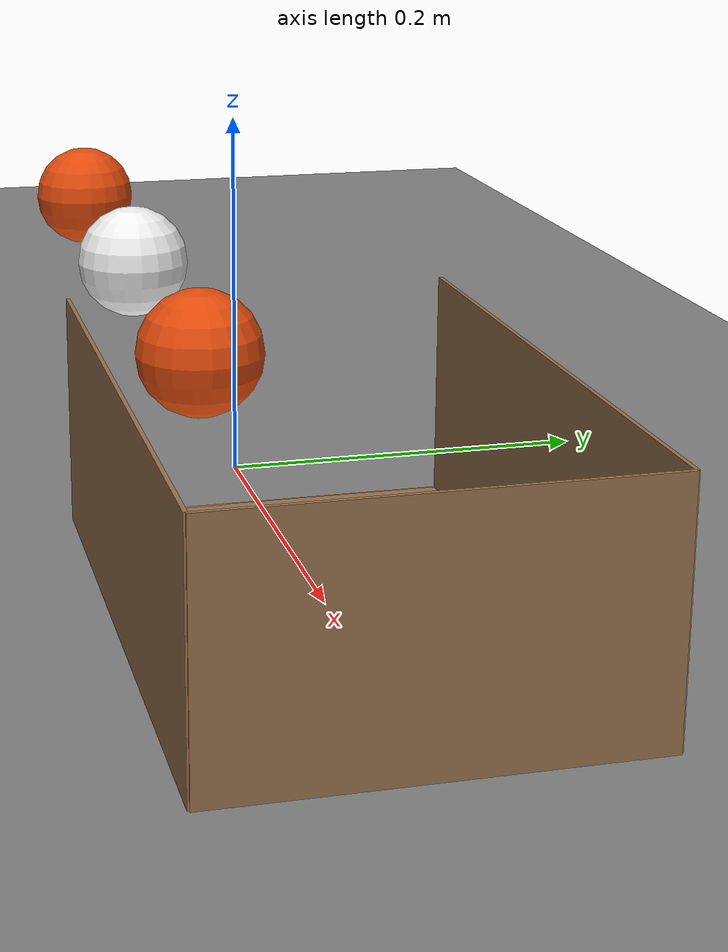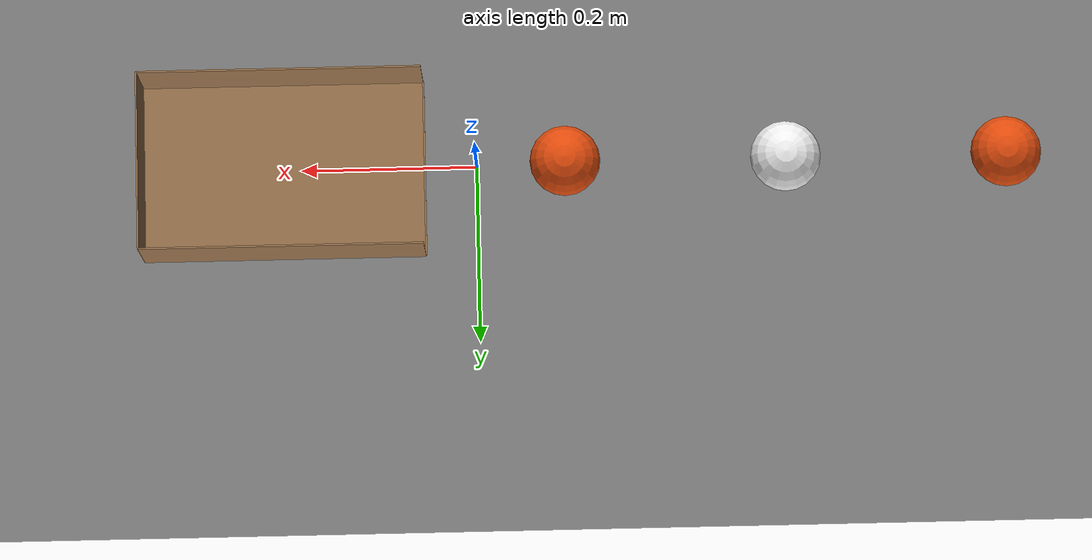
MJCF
<mujoco model="three_rolling_balls_into_a_cup">
  <compiler angle="radian"/>
  <option timestep="0.002"/>
  <worldbody>
    <geom name="floor" type="plane" size="4 4 0.1" friction="0.6 0.001 0.0003"/>
    <body name="ball1" pos="-0.6 0 0.04">
      <freejoint/>
      <geom name="ball1" type="sphere" pos="0 0 0" size="0.04" mass="0.1" condim="6" friction="0.6 0.001 0.0003" solref="0.01 0.2" rgba="0.9 0.3 0.05 1"/>
    </body>
    <body name="ball2" pos="-0.35 0 0.04">
      <freejoint/>
      <geom name="ball2" type="sphere" pos="0 0 0" size="0.04" mass="0.1" condim="6" friction="0.6 0.001 0.0003" solref="0.01 0.2" rgba="0.95 0.95 0.95 1"/>
    </body>
    <body name="ball3" pos="-0.1 0 0.04">
      <freejoint/>
      <geom name="ball3" type="sphere" pos="0 0 0" size="0.04" mass="0.1" condim="6" friction="0.6 0.001 0.0003" solref="0.01 0.2" rgba="0.9 0.3 0.05 1"/>
    </body>
    <body name="cup">
      <geom name="cup_base" type="box" pos="0.22 0 0.0005" size="0.16 0.1 0.0005" friction="0.8 0.01 0.01" solref="0.01 1" rgba="0.6 0.45 0.3 1"/>
      <geom name="cup_near_wall" type="box" pos="0.06 0 0.0005" size="0.001 0.1 0.0005" friction="0.8 0.01 0.01" solref="0.01 1" rgba="0.6 0.45 0.3 1"/>
      <geom name="cup_far_wall" type="box" pos="0.38 0 0.06" size="0.001 0.1 0.06" friction="0.8 0.01 0.01" solref="0.01 1" rgba="0.6 0.45 0.3 1"/>
      <geom name="cup_left_wall" type="box" pos="0.22 0.1 0.06" size="0.16 0.001 0.06" friction="0.8 0.01 0.01" solref="0.01 1" rgba="0.6 0.45 0.3 1"/>
      <geom name="cup_right_wall" type="box" pos="0.22 -0.1 0.06" size="0.16 0.001 0.06" friction="0.8 0.01 0.01" solref="0.01 1" rgba="0.6 0.45 0.3 1"/>
    </body>
  </worldbody>
  <keyframe>
    <key name="start" qpos="-0.6 0 0.04 1 0 0 0 -0.35 0 0.04 1 0 0 0 -0.1 0 0.04 1 0 0 0" qvel="1.4 0 0 0 35 0 0 0 0 0 0 0 0 0 0 0 0 0"/>
  </keyframe>
</mujoco>
